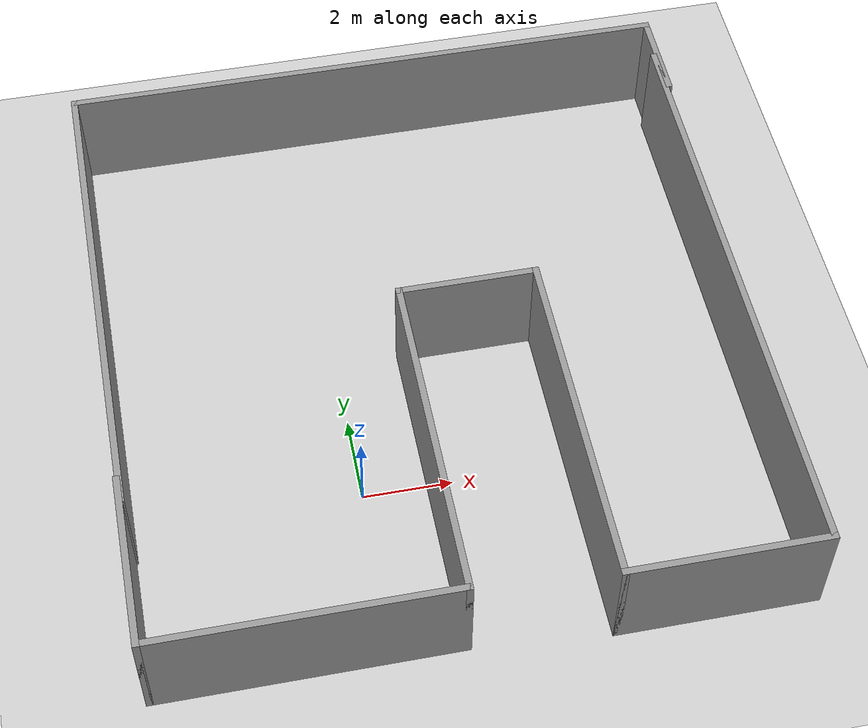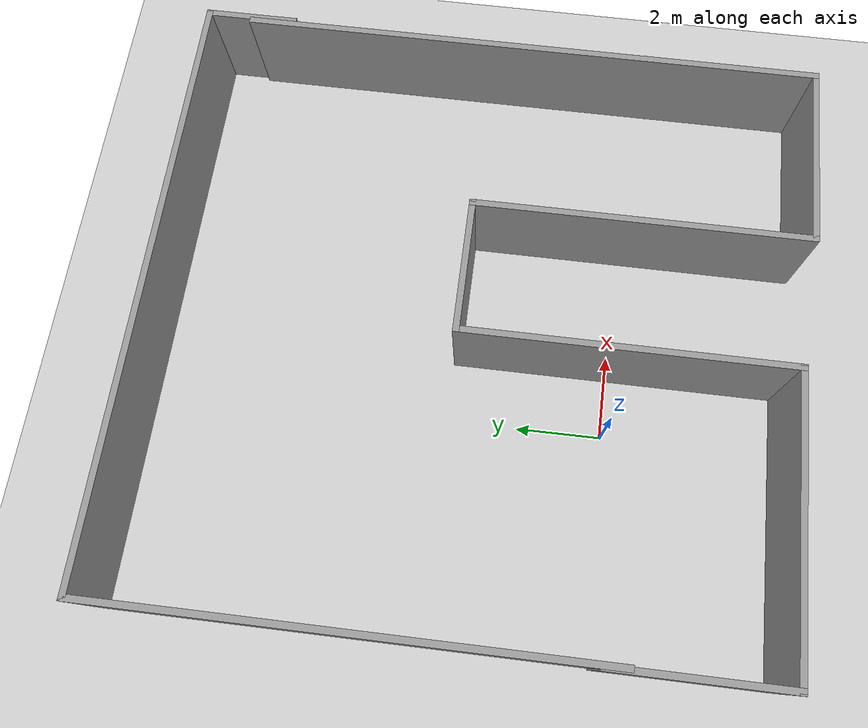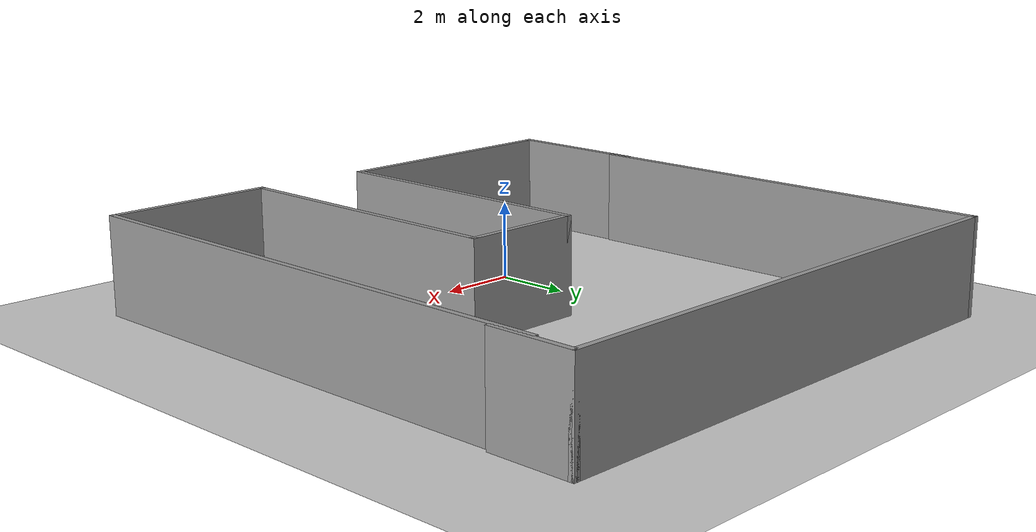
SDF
<sdf version="1.6">
 <world name="default">
  <model name="ground_plane">
   <static>1</static>
   <link name="link">
    <collision name="collision">
     <geometry><plane><normal>0 0 1</normal><size>100 100</size></plane></geometry>
     <surface><friction><ode><mu>100</mu><mu2>50</mu2></ode></friction></surface>
    </collision>
    <visual name="visual">
     <cast_shadows>0</cast_shadows>
     <geometry><plane><normal>0 0 1</normal><size>100 100</size></plane></geometry>
     <material>
      <script><uri>file://media/materials/scripts/gazebo.material</uri><name>Gazebo/Grey</name></script>
     </material>
    </visual>
   </link>
  </model>
  <light name="sun" type="directional">
   <pose>0 0 10 0 -0 0</pose>
   <diffuse>0.8 0.8 0.8 1</diffuse>
   <specular>0.2 0.2 0.2 1</specular>
   <attenuation>
    <range>1000</range>
    <constant>0.9</constant>
    <linear>0.01</linear>
    <quadratic>0.001</quadratic>
   </attenuation>
   <direction>-0.5 0.1 -0.9</direction>
  </light>
  <gravity>0 0 -9.8</gravity>
  <magnetic_field>6e-06 2.3e-05 -4.2e-05</magnetic_field>
  <atmosphere type="adiabatic"/>
  <physics name="default_physics" default="0" type="ode">
   <max_step_size>0.001</max_step_size>
   <real_time_factor>1</real_time_factor>
   <real_time_update_rate>1000</real_time_update_rate>
  </physics>
  <scene><ambient>0.4 0.4 0.4 1</ambient><background>0.7 0.7 0.7 1</background><shadows>1</shadows></scene>
  <spherical_coordinates>
   <surface_model>EARTH_WGS84</surface_model>
   <latitude_deg>0</latitude_deg>
   <longitude_deg>0</longitude_deg>
   <elevation>0</elevation>
   <heading_deg>0</heading_deg>
  </spherical_coordinates>
  <light name="user_point_light_0" type="point">
   <pose>4.26479 -3.34445 1 0 -0 0</pose>
   <diffuse>0.5 0.5 0.5 1</diffuse>
   <specular>0.1 0.1 0.1 1</specular>
   <attenuation>
    <range>20</range>
    <constant>0.5</constant>
    <linear>0.01</linear>
    <quadratic>0.001</quadratic>
   </attenuation>
   <cast_shadows>0</cast_shadows>
   <direction>0 0 -1</direction>
  </light>
  <model name="U_other">
   <pose>1.95816 3.2046 0 0 -0 0</pose>
   <link name="Wall_10">
    <collision name="Wall_10_Collision">
     <geometry><box><size>3.25 0.15 2.5</size></box></geometry>
     <pose>0 0 1.25 0 -0 0</pose>
    </collision>
    <visual name="Wall_10_Visual">
     <pose>0 0 1.25 0 -0 0</pose>
     <geometry><box><size>3.25 0.15 2.5</size></box></geometry>
     <material>
      <script><uri>file://media/materials/scripts/gazebo.material</uri><name>Gazebo/Grey</name></script>
      <ambient>1 1 1 1</ambient>
     </material>
    </visual>
    <pose>1.08184 0.375403 0 0 -0 0</pose>
   </link>
   <link name="Wall_11">
    <collision name="Wall_11_Collision">
     <geometry><box><size>8 0.15 2.5</size></box></geometry>
     <pose>0 0 1.25 0 -0 0</pose>
    </collision>
    <visual name="Wall_11_Visual">
     <pose>0 0 1.25 0 -0 0</pose>
     <geometry><box><size>8 0.15 2.5</size></box></geometry>
     <material>
      <script><uri>file://media/materials/scripts/gazebo.material</uri><name>Gazebo/Grey</name></script>
      <ambient>1 1 1 1</ambient>
     </material>
    </visual>
    <pose>2.63184 -3.5496 0 0 0 -1.5708</pose>
   </link>
   <link name="Wall_12">
    <collision name="Wall_12_Collision">
     <geometry><box><size>4.5 0.15 2.5</size></box></geometry>
     <pose>0 0 1.25 0 -0 0</pose>
    </collision>
    <visual name="Wall_12_Visual">
     <pose>0 0 1.25 0 -0 0</pose>
     <geometry><box><size>4.5 0.15 2.5</size></box></geometry>
     <material>
      <script><uri>file://media/materials/scripts/gazebo.material</uri><name>Gazebo/Grey</name></script>
      <ambient>1 1 1 1</ambient>
     </material>
    </visual>
    <pose>4.80684 -7.4746 0 0 -0 0</pose>
   </link>
   <link name="Wall_13">
    <collision name="Wall_13_Collision">
     <geometry><box><size>14 0.15 2.5</size></box></geometry>
     <pose>0 0 1.25 0 -0 0</pose>
    </collision>
    <visual name="Wall_13_Visual">
     <pose>0 0 1.25 0 -0 0</pose>
     <geometry><box><size>14 0.15 2.5</size></box></geometry>
     <material>
      <script><uri>file://media/materials/scripts/gazebo.material</uri><name>Gazebo/Grey</name></script>
      <ambient>1 1 1 1</ambient>
     </material>
    </visual>
    <pose>6.98184 -0.549597 0 0 -0 1.5708</pose>
   </link>
   <link name="Wall_18">
    <collision name="Wall_18_Collision">
     <geometry><box><size>11.5 0.15 2.5</size></box></geometry>
     <pose>0 0 1.25 0 -0 0</pose>
    </collision>
    <visual name="Wall_18_Visual">
     <pose>0 0 1.25 0 -0 0</pose>
     <geometry><box><size>11.5 0.15 2.5</size></box></geometry>
     <material>
      <script><uri>file://media/materials/scripts/gazebo.material</uri><name>Gazebo/Grey</name></script>
      <ambient>1 1 1 1</ambient>
     </material>
    </visual>
    <pose>-7.03184 1.7996 0 0 -0 1.5708</pose>
   </link>
   <link name="Wall_19">
    <collision name="Wall_19_Collision">
     <geometry><box><size>14.25 0.15 2.5</size></box></geometry>
     <pose>0 0 1.25 0 -0 0</pose>
    </collision>
    <visual name="Wall_19_Visual">
     <pose>0 0 1.25 0 -0 0</pose>
     <geometry><box><size>14.25 0.15 2.5</size></box></geometry>
     <material>
      <script><uri>file://media/materials/scripts/gazebo.material</uri><name>Gazebo/Grey</name></script>
      <ambient>1 1 1 1</ambient>
     </material>
    </visual>
    <pose>0.018162 7.4746 0 0 -0 0</pose>
   </link>
   <link name="Wall_20">
    <collision name="Wall_20_Collision">
     <geometry><box><size>2.25 0.15 2.5</size></box></geometry>
     <pose>0 0 1.25 0 -0 0</pose>
    </collision>
    <visual name="Wall_20_Visual">
     <pose>0 0 1.25 0 -0 0</pose>
     <geometry><box><size>2.25 0.15 2.5</size></box></geometry>
     <material>
      <script><uri>file://media/materials/scripts/gazebo.material</uri><name>Gazebo/Grey</name></script>
      <ambient>1 1 1 1</ambient>
     </material>
    </visual>
    <pose>7.06816 6.4246 0 0 0 -1.5708</pose>
   </link>
   <link name="Wall_7">
    <collision name="Wall_7_Collision">
     <geometry><box><size>4 0.15 2.5</size></box></geometry>
     <pose>0 0 1.25 0 -0 0</pose>
    </collision>
    <visual name="Wall_7_Visual">
     <pose>0 0 1.25 0 -0 0</pose>
     <geometry><box><size>4 0.15 2.5</size></box></geometry>
     <material>
      <script><uri>file://media/materials/scripts/gazebo.material</uri><name>Gazebo/Grey</name></script>
      <ambient>1 1 1 1</ambient>
     </material>
    </visual>
    <pose>-7.06816 -5.2996 0 0 0 -1.5708</pose>
   </link>
   <link name="Wall_8">
    <collision name="Wall_8_Collision">
     <geometry><box><size>6.75 0.15 2.5</size></box></geometry>
     <pose>0 0 1.25 0 -0 0</pose>
    </collision>
    <visual name="Wall_8_Visual">
     <pose>0 0 1.25 0 -0 0</pose>
     <geometry><box><size>6.75 0.15 2.5</size></box></geometry>
     <material>
      <script><uri>file://media/materials/scripts/gazebo.material</uri><name>Gazebo/Grey</name></script>
      <ambient>1 1 1 1</ambient>
     </material>
    </visual>
    <pose>-3.76816 -7.2246 0 0 -0 0</pose>
   </link>
   <link name="Wall_9">
    <collision name="Wall_9_Collision">
     <geometry><box><size>7.75 0.15 2.5</size></box></geometry>
     <pose>0 0 1.25 0 -0 0</pose>
    </collision>
    <visual name="Wall_9_Visual">
     <pose>0 0 1.25 0 -0 0</pose>
     <geometry><box><size>7.75 0.15 2.5</size></box></geometry>
     <material>
      <script><uri>file://media/materials/scripts/gazebo.material</uri><name>Gazebo/Grey</name></script>
      <ambient>1 1 1 1</ambient>
     </material>
    </visual>
    <pose>-0.468162 -3.4246 0 0 -0 1.5708</pose>
   </link>
   <static>1</static>
  </model>
 </world>
</sdf>
